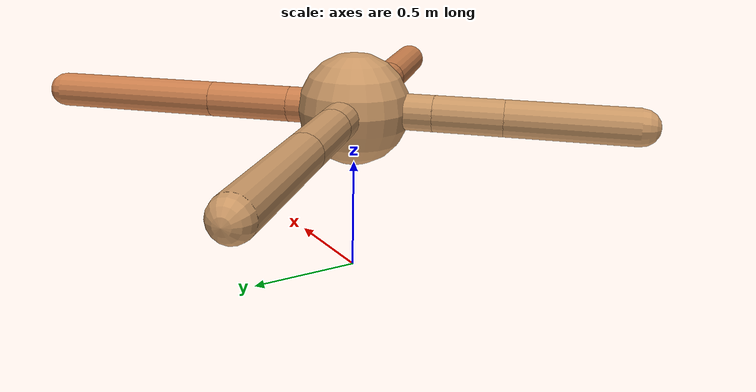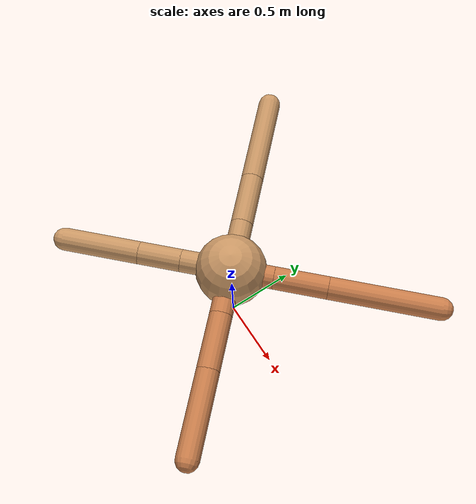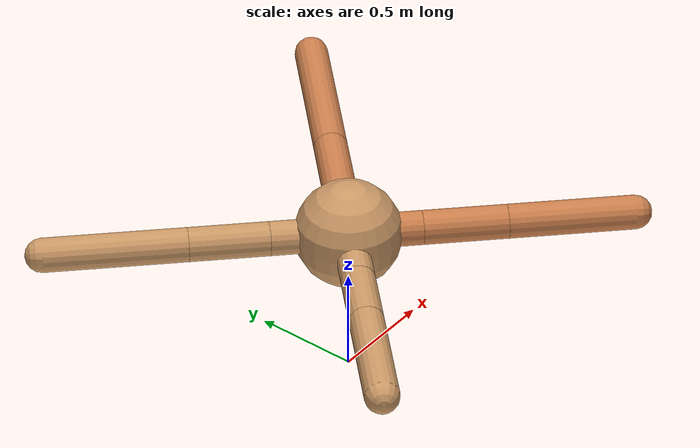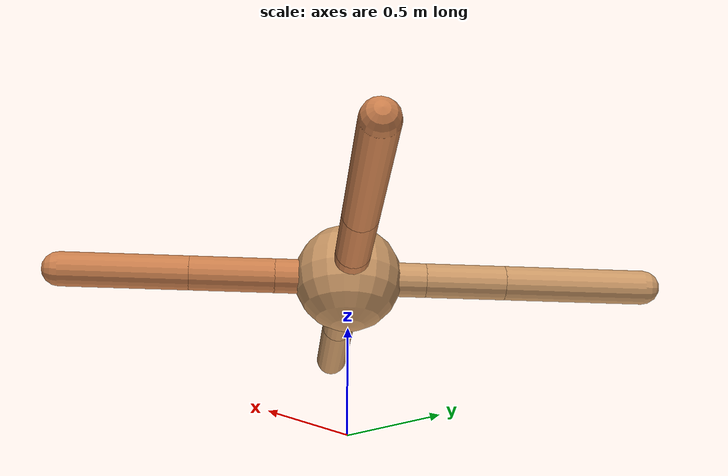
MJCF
<mujoco model="ant">
  <compiler angle="degree" coordinate="local" inertiafromgeom="true" />
  <option integrator="RK4" timestep="0.01" />
  <custom>
    <numeric data="0.0 0.0 0.55 1.0 0.0 0.0 0.0 0.0 1.0 0.0 -1.0 0.0 -1.0 0.0 1.0" name="init_qpos" />
  </custom>
  <default>
    <joint armature="1" damping="1" limited="true" />
    <geom conaffinity="0" condim="3" density="5.0" friction="1.5 0.1 0.1" margin="0.01" rgba="0.8 0.6 0.4 1" />
  </default>
  <worldbody>
    <body name="torso" pos="0 0 0.75">
      <geom name="torso_geom" pos="0 0 0" size="0.25" type="sphere" />

      <body name="front_left_leg" pos="0 0 0">
        <geom fromto="0.0 0.0 0.0 0.21170723466838903 0.21170723466838903 0.0" name="aux_1_geom" size="0.08" type="capsule" rgba=".8 .5 .3 1" />
        <body name="aux_1" pos="0.21170723466838903 0.21170723466838903 0.0">
          <joint axis="0 0 1" name="hip_1" pos="0.0 0.0 0.0" range="-40 40" type="hinge" />
          <geom fromto="0.0 0.0 0.0 0.2674862020060982 0.2674862020060982 0.0" name="left_leg_geom" size="0.08" type="capsule" rgba=".8 .5 .3 1" />
          <body pos="0.2674862020060982 0.2674862020060982 0.0" name="front_left_foot">
            <joint axis="-1 1 0" name="ankle_1" pos="0.0 0.0 0.0" range="30 100" type="hinge" />
            <geom fromto="0.0 0.0 0.0 0.5493132996623468 0.5493132996623468 0.0" name="left_ankle_geom" size="0.08" type="capsule" rgba=".8 .5 .3 1" />
          </body>
        </body>
      </body>
      <body name="front_right_leg" pos="0 0 0">
        <geom fromto="0.0 0.0 0.0 -0.2547751837798567 0.2547751837798567 0.0" name="aux_2_geom" size="0.08" type="capsule" />
        <body name="aux_2" pos="-0.2547751837798567 0.2547751837798567 0.0">
          <joint axis="0 0 1" name="hip_2" pos="0.0 0.0 0.0" range="-40 40" type="hinge" />
          <geom fromto="0.0 0.0 0.0 -0.26368963742129087 0.26368963742129087 0.0" name="right_leg_geom" size="0.08" type="capsule" />
          <body pos="-0.26368963742129087 0.26368963742129087 0.0" name="front_right_foot">
            <joint axis="1 1 0" name="ankle_2" pos="0.0 0.0 0.0" range="-100 -30" type="hinge" />
            <geom fromto="0.0 0.0 0.0 -0.46913364762530546 0.46913364762530546 0.0" name="right_ankle_geom" size="0.08" type="capsule" />
          </body>
        </body>
      </body>
      <body name="left_back_leg" pos="0 0 0">
        <geom fromto="0.0 0.0 0.0 -0.25028297161562313 -0.25028297161562313 0.0" name="aux_3_geom" size="0.08" type="capsule" />
        <body name="aux_3" pos="-0.25028297161562313 -0.25028297161562313 0.0">
          <joint axis="0 0 1" name="hip_3" pos="0.0 0.0 0.0" range="-40 40" type="hinge" />
          <geom fromto="0.0 0.0 0.0 -0.21185542239554947 -0.21185542239554947 0.0" name="back_leg_geom" size="0.08" type="capsule" />
          <body pos="-0.21185542239554947 -0.21185542239554947 0.0" name="left_back_foot">
            <joint axis="-1 1 0" name="ankle_3" pos="0.0 0.0 0.0" range="-100 -30" type="hinge" />
            <geom fromto="0.0 0.0 0.0 -0.3820975831301244 -0.3820975831301244 0.0" name="third_ankle_geom" size="0.08" type="capsule" />
          </body>
        </body>
      </body>
      <body name="right_back_leg" pos="0 0 0">
        <geom fromto="0.0 0.0 0.0 0.2402377742401044 -0.2402377742401044 0.0" name="aux_4_geom" size="0.08" type="capsule" rgba=".8 .5 .3 1" />
        <body name="aux_4" pos="0.2402377742401044 -0.2402377742401044 0.0">
          <joint axis="0 0 1" name="hip_4" pos="0.0 0.0 0.0" range="-40 40" type="hinge" />
          <geom fromto="0.0 0.0 0.0 0.27785284486306505 -0.27785284486306505 0.0" name="rightback_leg_geom" size="0.08" type="capsule" rgba=".8 .5 .3 1" />
          <body pos="0.27785284486306505 -0.27785284486306505 0.0" name="right_back_foot">
            <joint axis="1 1 0" name="ankle_4" pos="0.0 0.0 0.0" range="30 100" type="hinge" />
            <geom fromto="0.0 0.0 0.0 0.41701390870249205 -0.41701390870249205 0.0" name="fourth_ankle_geom" size="0.08" type="capsule" rgba=".8 .5 .3 1" />
          </body>
        </body>
      </body>
    </body>
  </worldbody>
  <actuator>
    <motor ctrllimited="true" ctrlrange="-1.0 1.0" joint="hip_4" gear="150" />
    <motor ctrllimited="true" ctrlrange="-1.0 1.0" joint="ankle_4" gear="150" />
    <motor ctrllimited="true" ctrlrange="-1.0 1.0" joint="hip_1" gear="150" />
    <motor ctrllimited="true" ctrlrange="-1.0 1.0" joint="ankle_1" gear="150" />
    <motor ctrllimited="true" ctrlrange="-1.0 1.0" joint="hip_2" gear="150" />
    <motor ctrllimited="true" ctrlrange="-1.0 1.0" joint="ankle_2" gear="150" />
    <motor ctrllimited="true" ctrlrange="-1.0 1.0" joint="hip_3" gear="150" />
    <motor ctrllimited="true" ctrlrange="-1.0 1.0" joint="ankle_3" gear="150" />
  </actuator>
</mujoco>
